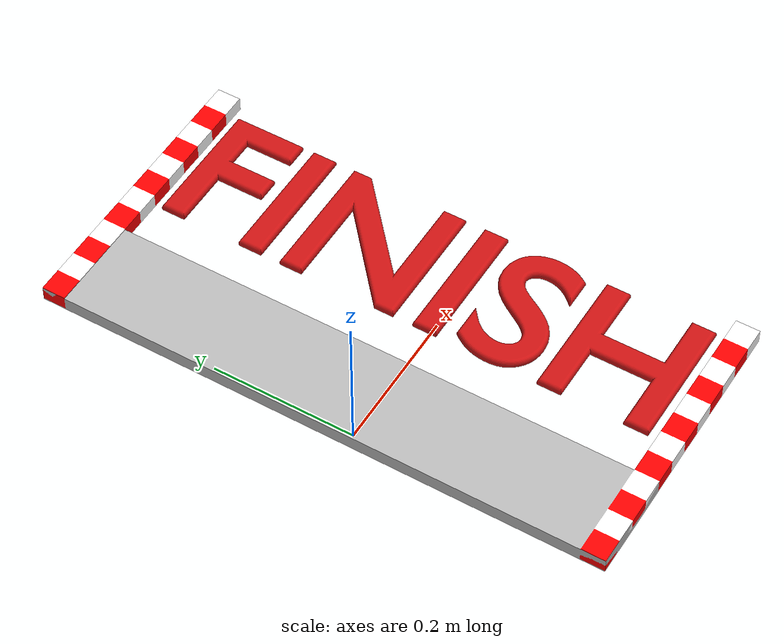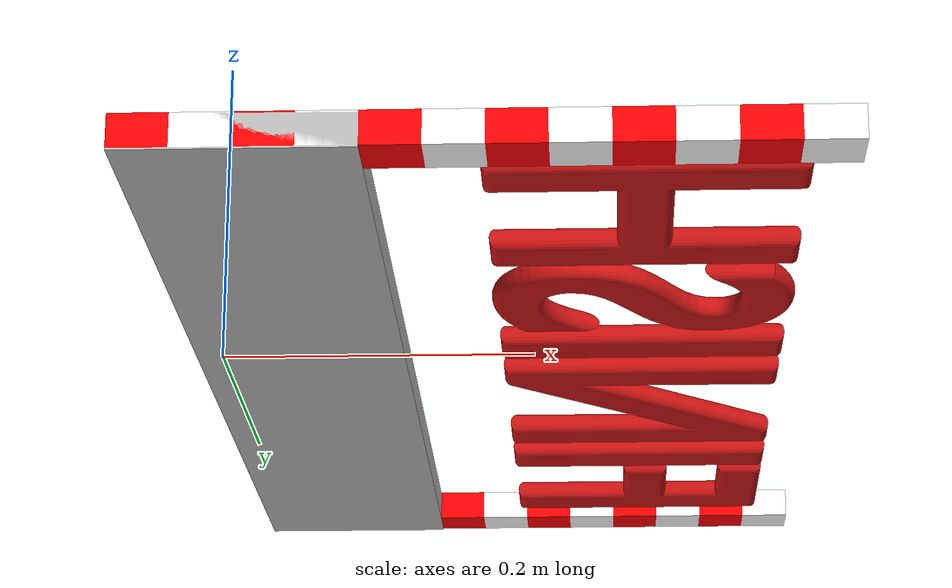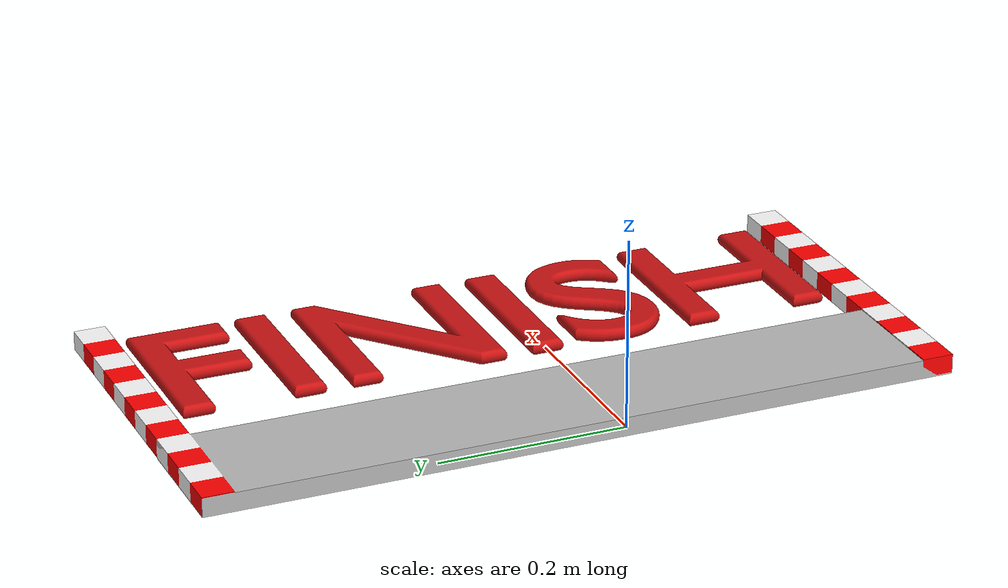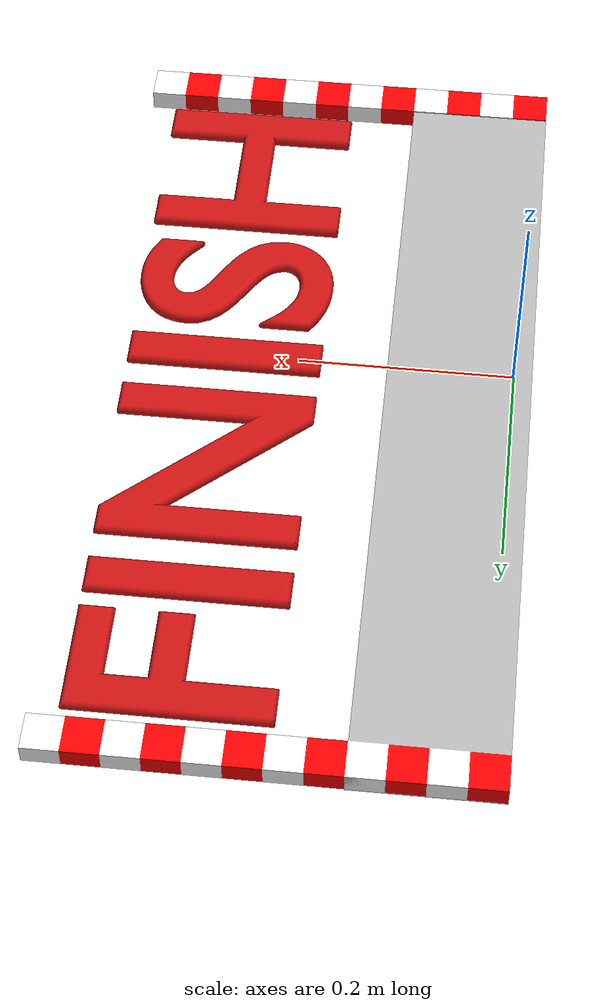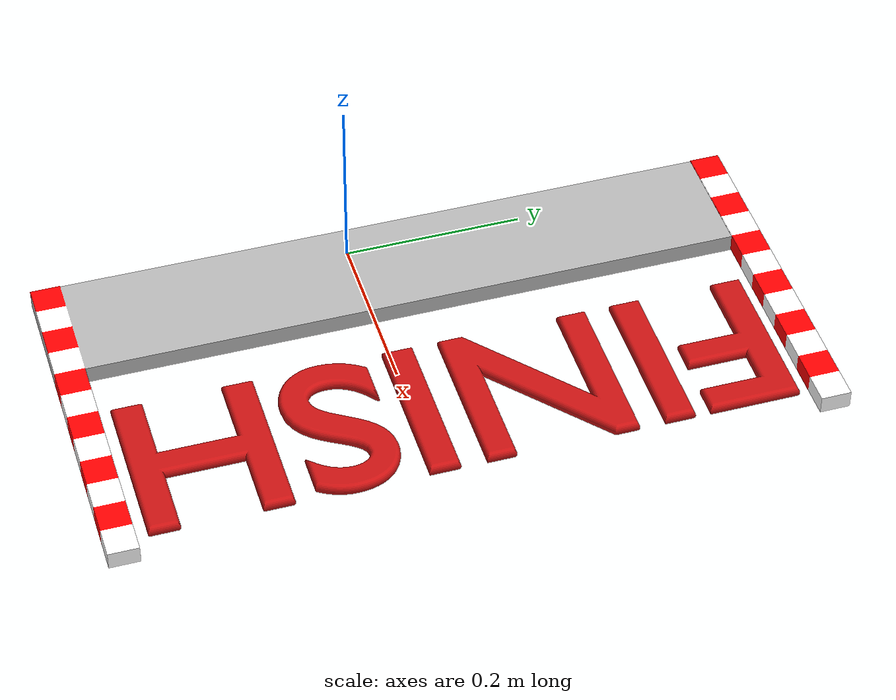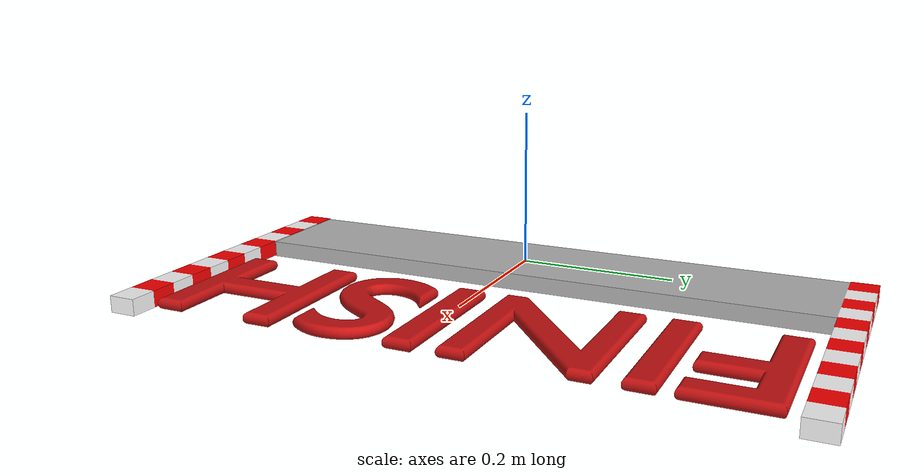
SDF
<?xml version="1.0" ?>
<sdf version='1.5'>
<model name='finish_line_mini'>
<static>true</static>
<link name="link">
   <pose frame=''>0 0 0.01 0 0 0</pose>
  <visual name='finishV'>
    <cast_shadows>false</cast_shadows>
    <geometry>
      <mesh>
        <scale>1.0 1.0 1.0</scale>
        <uri>model://finish_line_mini/finish_line_mini.dae</uri>
      </mesh>
    </geometry>
    <material>
      <script>
        <name>finish_line_mini</name>
        <uri>model://finish_line_mini/finish_line_mini.dae</uri>
      </script>
    </material>
  </visual>
</link>
</model>
</sdf>
